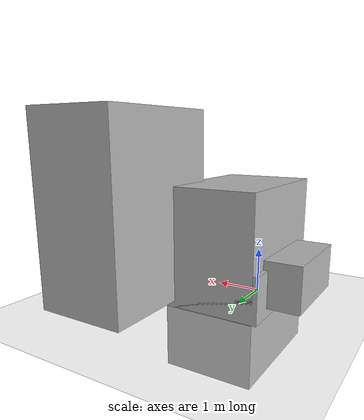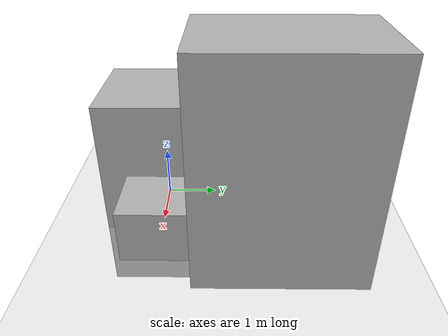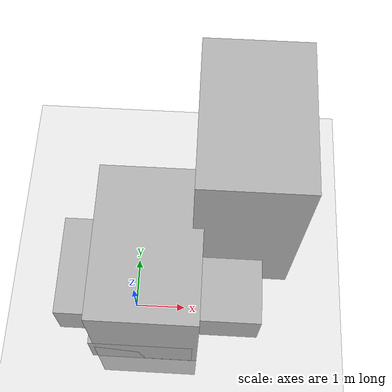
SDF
<?xml version="1.0" ?>
<!-- generated by generate_world_sdf.sh from config/robots.json static_objects -->
<sdf version="1.6">
  <world name="empty">
    <physics name="1ms" type="ignored">
      <max_step_size>0.001</max_step_size>
      <real_time_factor>1.0</real_time_factor>
    </physics>
    <plugin filename="ignition-gazebo-physics-system" name="gz::sim::systems::Physics"/>
    <plugin filename="ignition-gazebo-user-commands-system" name="gz::sim::systems::UserCommands"/>
    <plugin filename="ignition-gazebo-scene-broadcaster-system" name="gz::sim::systems::SceneBroadcaster"/>
    <plugin filename="ignition-gazebo-contact-system" name="gz::sim::systems::Contact"/>

    <light type="directional" name="sun">
      <cast_shadows>true</cast_shadows>
      <pose>0 0 10 0 0 0</pose>
      <diffuse>0.8 0.8 0.8 1</diffuse>
      <specular>0.2 0.2 0.2 1</specular>
      <attenuation>
        <range>1000</range>
        <constant>0.9</constant>
        <linear>0.01</linear>
        <quadratic>0.001</quadratic>
      </attenuation>
      <direction>-0.5 0.1 -0.9</direction>
    </light>

    <model name="ground_plane">
      <static>true</static>
      <link name="link">
        <collision name="collision">
          <geometry><plane><normal>0 0 1</normal><size>100 100</size></plane></geometry>
        </collision>
        <visual name="visual">
          <geometry><plane><normal>0 0 1</normal><size>100 100</size></plane></geometry>
          <material>
            <ambient>0.8 0.8 0.8 1</ambient>
            <diffuse>0.8 0.8 0.8 1</diffuse>
            <specular>0.8 0.8 0.8 1</specular>
          </material>
        </visual>
      </link>
    </model>

    <model name="solution_vial">
      <static>true</static>
      <pose>0.15 0.45 0.1 0.0 0.0 0.0</pose>
      <link name="link">
        <collision name="collision"><geometry><cylinder><radius>0.3</radius><length>2.0</length></cylinder></geometry></collision>
        <visual name="visual"><geometry><cylinder><radius>0.3</radius><length>2.0</length></cylinder></geometry></visual>
      </link>
    </model>
    <model name="grid">
      <static>true</static>
      <pose>0.5 0.4 0.7 0.0 0.0 0.0</pose>
      <link name="link">
        <collision name="collision"><geometry><box><size>4.0 2.0 1.0</size></box></geometry></collision>
        <visual name="visual"><geometry><box><size>4.0 2.0 1.0</size></box></geometry></visual>
      </link>
    </model>
    <model name="Virtual_Dosing_Station">
      <static>true</static>
      <pose>2.1 2.2 2.14 0.0 0.0 0.0</pose>
      <link name="link">
        <collision name="collision"><geometry><box><size>2.0 3.0 4.0</size></box></geometry></collision>
        <visual name="visual"><geometry><box><size>2.0 3.0 4.0</size></box></geometry></visual>
      </link>
    </model>
    <model name="COM8">
      <static>true</static>
      <pose>0.2 0.4 0.5 0.0 0.0 0.0</pose>
      <link name="link">
        <collision name="collision"><geometry><box><size>2.0 3.0 1.0</size></box></geometry></collision>
        <visual name="visual"><geometry><box><size>2.0 3.0 1.0</size></box></geometry></visual>
      </link>
    </model>
    <model name="COM3">
      <static>true</static>
      <pose>0.3 0.4 0.6 0.0 0.0 0.0</pose>
      <link name="link">
        <collision name="collision"><geometry><box><size>2.0 3.0 4.0</size></box></geometry></collision>
        <visual name="visual"><geometry><box><size>2.0 3.0 4.0</size></box></geometry></visual>
      </link>
    </model>
  </world>
</sdf>
